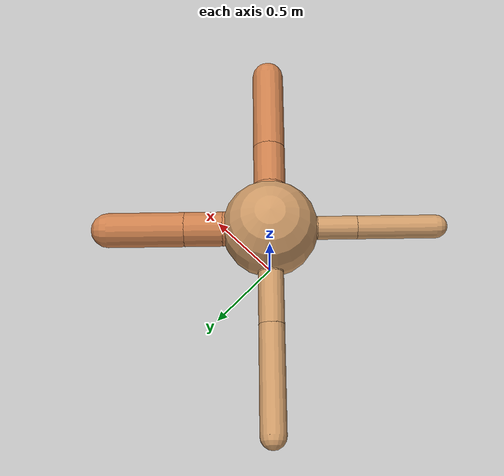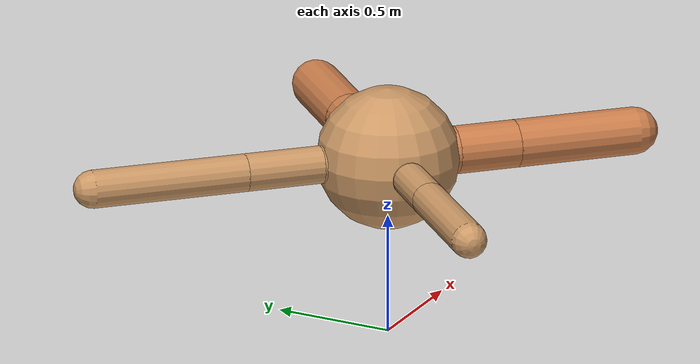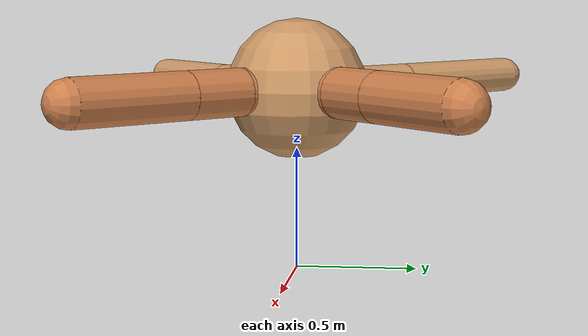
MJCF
<?xml version="1.0" ?>
<mujoco model="ant">

	<compiler angle="degree" coordinate="local" inertiafromgeom="true"/>

	<option integrator="RK4" timestep="0.01"/>

	<custom>

		<numeric data="0.0 0.0 0.55 1.0 0.0 0.0 0.0 0.0 1.0 0.0 -1.0 0.0 -1.0 0.0 1.0" name="init_qpos"/>

	</custom>

	<default>

		<joint armature="1" damping="1" limited="true"/>

		<geom conaffinity="0" condim="3" density="5.0" friction="1.5 0.1 0.1" margin="0.01" rgba="0.8 0.6 0.4 1"/>

	</default>

	<worldbody>

		<body name="torso" pos="0 0 0.75">

			<geom name="torso_geom" pos="0 0 0" size="0.2906693378739063" type="sphere"/>

			<!--joint armature="0" damping="0" limited="false" margin="0.01" name="root" pos="0 0 0" type="free"/-->

			<body name="front_left_leg" pos="0 0 0">

				<geom fromto="0 0 0 0.2 0.2 0" name="aux_1_geom" size="0.10395490883835581" type="capsule" rgba=".8 .5 .3 1"/>

				<body name="aux_1" pos="0.2 0.2 0">

					<joint axis="0 0 1" name="hip_1" pos="0.0 0.0 0.0" range="-40 40" type="hinge"/>

					<geom fromto="0 0 0 0.16153127799096864 0.16153127799096864 0" name="left_leg_geom" size="0.10395490883835581" type="capsule" rgba=".8 .5 .3 1"/>

					<body pos="0.16153127799096864 0.16153127799096864 0" name="front_left_foot">

						<joint axis="-1 1 0" name="ankle_1" pos="0.0 0.0 0.0" range="30 100" type="hinge"/>

						<geom fromto="0 0 0 0.3230625559819373 0.3230625559819373 0" name="left_ankle_geom" size="0.10395490883835581" type="capsule" rgba=".8 .5 .3 1"/>

					</body>

				</body>

			</body>

			<body name="front_right_leg" pos="0 0 0">

				<geom fromto="0 0 0 -0.2 0.2 0" name="aux_2_geom" size="0.07648735288821737" type="capsule"/>

				<body name="aux_2" pos="-0.2 0.2 0">

					<joint axis="0 0 1" name="hip_2" pos="0.0 0.0 0.0" range="-40 40" type="hinge"/>

					<geom fromto="0 0 0 -0.22168265214576965 0.22168265214576965 0" name="right_leg_geom" size="0.07648735288821737" type="capsule"/>

					<body pos="-0.22168265214576965 0.22168265214576965 0" name="front_right_foot">

						<joint axis="1 1 0" name="ankle_2" pos="0.0 0.0 0.0" range="-100 -30" type="hinge"/>

						<geom fromto="0 0 0 -0.4433653042915393 0.4433653042915393 0" name="right_ankle_geom" size="0.07648735288821737" type="capsule"/>

					</body>

				</body>

			</body>

			<body name="left_back_leg" pos="0 0 0">

				<geom fromto="0 0 0 -0.2 -0.2 0" name="aux_3_geom" size="0.07021650516660417" type="capsule"/>

				<body name="aux_3" pos="-0.2 -0.2 0">

					<joint axis="0 0 1" name="hip_3" pos="0.0 0.0 0.0" range="-40 40" type="hinge"/>

					<geom fromto="0 0 0 -0.16730887125915117 -0.16730887125915117 0" name="back_leg_geom" size="0.07021650516660417" type="capsule"/>

					<body pos="-0.16730887125915117 -0.16730887125915117 0" name="left_back_foot">

						<joint axis="-1 1 0" name="ankle_3" pos="0.0 0.0 0.0" range="-100 -30" type="hinge"/>

						<geom fromto="0 0 0 -0.33461774251830234 -0.33461774251830234 0" name="third_ankle_geom" size="0.07021650516660417" type="capsule"/>

					</body>

				</body>

			</body>

			<body name="right_back_leg" pos="0 0 0">

				<geom fromto="0 0 0 0.2 -0.2 0" name="aux_4_geom" size="0.098165937906629" type="capsule" rgba=".8 .5 .3 1"/>

				<body name="aux_4" pos="0.2 -0.2 0">

					<joint axis="0 0 1" name="hip_4" pos="0.0 0.0 0.0" range="-40 40" type="hinge"/>

					<geom fromto="0 0 0 0.18248662915860284 -0.18248662915860284 0" name="rightback_leg_geom" size="0.098165937906629" type="capsule" rgba=".8 .5 .3 1"/>

					<body pos="0.18248662915860284 -0.18248662915860284 0" name="right_back_foot">

						<joint axis="1 1 0" name="ankle_4" pos="0.0 0.0 0.0" range="30 100" type="hinge"/>

						<geom fromto="0 0 0 0.3649732583172057 -0.3649732583172057 0" name="fourth_ankle_geom" size="0.098165937906629" type="capsule" rgba=".8 .5 .3 1"/>

					</body>

				</body>

			</body>

		</body>

	</worldbody>

	<actuator>

		<motor ctrllimited="true" ctrlrange="-1.0 1.0" joint="hip_4" gear="150"/>

		<motor ctrllimited="true" ctrlrange="-1.0 1.0" joint="ankle_4" gear="150"/>

		<motor ctrllimited="true" ctrlrange="-1.0 1.0" joint="hip_1" gear="150"/>

		<motor ctrllimited="true" ctrlrange="-1.0 1.0" joint="ankle_1" gear="150"/>

		<motor ctrllimited="true" ctrlrange="-1.0 1.0" joint="hip_2" gear="150"/>

		<motor ctrllimited="true" ctrlrange="-1.0 1.0" joint="ankle_2" gear="150"/>

		<motor ctrllimited="true" ctrlrange="-1.0 1.0" joint="hip_3" gear="150"/>

		<motor ctrllimited="true" ctrlrange="-1.0 1.0" joint="ankle_3" gear="150"/>

	</actuator>

</mujoco>
